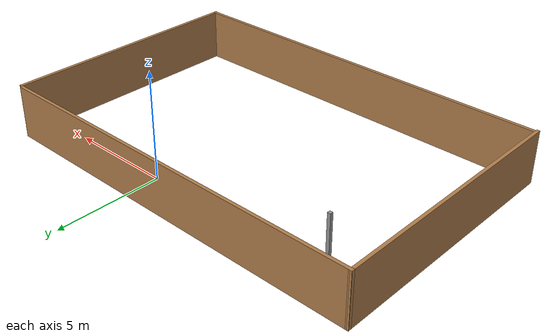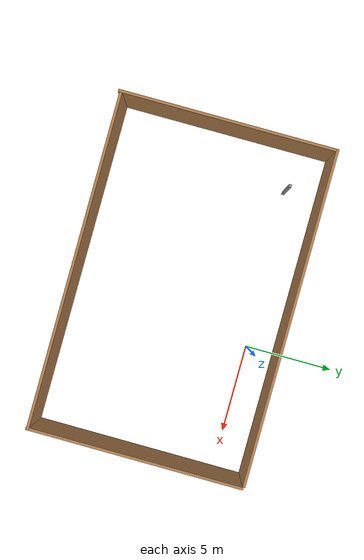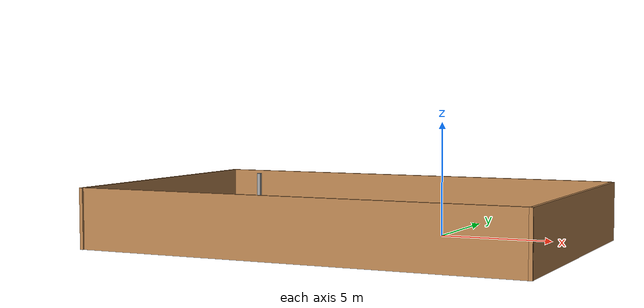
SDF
<?xml version='1.0'?>
<sdf version='1.6'>
  <model name='C205'>
    <pose frame=''>-2.17369 -4.39009 0 0 -0 0</pose>
    <link name='Wall_24'>
      <collision name='Wall_24_Collision'>
        <geometry>
          <box>
            <size>0.15 0.15 2.5</size>
          </box>
        </geometry>
        <pose frame=''>0 0 1.25 0 -0 0</pose>
      </collision>
      <visual name='Wall_24_Visual'>
        <pose frame=''>0 0 1.25 0 -0 0</pose>
        <geometry>
          <box>
            <size>0.15 0.15 2.5</size>
          </box>
        </geometry>
        <material>
          <script>
            <uri>file://media/materials/scripts/gazebo.material</uri>
            <name>Gazebo/Grey</name>
          </script>
          <ambient>0 0 0 0</ambient>
        </material>
      </visual>
      <pose frame=''>-6.85815 4.07733 0 0 -0 0</pose>
    </link>
    <link name='Wall_25'>
      <collision name='Wall_25_Collision'>
        <geometry>
          <box>
            <size>18.6594 0.15 2.5</size>
          </box>
        </geometry>
        <pose frame=''>0 0 1.25 0 -0 0</pose>
      </collision>
      <visual name='Wall_25_Visual'>
        <pose frame=''>0 0 1.25 0 -0 0</pose>
        <geometry>
          <box>
            <size>18.6594 0.15 2.5</size>
          </box>
        </geometry>
        <material>
          <script>
            <uri>file://media/materials/scripts/gazebo.material</uri>
            <name>Gazebo/Wood</name>
          </script>
          <ambient>1 1 1 1</ambient>
        </material>
      </visual>
      <pose frame=''>-0.077807 6.00709 0 0 -0 3.14159</pose>
    </link>
    <link name='Wall_26'>
      <collision name='Wall_26_Collision'>
        <geometry>
          <box>
            <size>12.1642 0.15 2.5</size>
          </box>
        </geometry>
        <pose frame=''>0 0 1.25 0 -0 0</pose>
      </collision>
      <visual name='Wall_26_Visual'>
        <pose frame=''>0 0 1.25 0 -0 0</pose>
        <geometry>
          <box>
            <size>12.1642 0.15 2.5</size>
          </box>
        </geometry>
        <material>
          <script>
            <uri>file://media/materials/scripts/gazebo.material</uri>
            <name>Gazebo/Wood</name>
          </script>
          <ambient>1 1 1 1</ambient>
        </material>
      </visual>
      <pose frame=''>-9.31253 0 0 0 0 -1.5675</pose>
    </link>
    <link name='Wall_27'>
      <collision name='Wall_27_Collision'>
        <geometry>
          <box>
            <size>18.7752 0.15 2.5</size>
          </box>
        </geometry>
        <pose frame=''>0 0 1.25 0 -0 0</pose>
      </collision>
      <visual name='Wall_27_Visual'>
        <pose frame=''>0 0 1.25 0 -0 0</pose>
        <geometry>
          <box>
            <size>18.7752 0.15 2.5</size>
          </box>
        </geometry>
        <material>
          <script>
            <uri>file://media/materials/scripts/gazebo.material</uri>
            <name>Gazebo/Wood</name>
          </script>
          <ambient>1 1 1 1</ambient>
        </material>
      </visual>
      <pose frame=''>0.019855 -5.91924 0 0 -0 0.001197</pose>
    </link>
    <link name='Wall_28'>
      <collision name='Wall_28_Collision'>
        <geometry>
          <box>
            <size>12 0.15 2.5</size>
          </box>
        </geometry>
        <pose frame=''>0 0 1.25 0 -0 0</pose>
      </collision>
      <visual name='Wall_28_Visual'>
        <pose frame=''>0 0 1.25 0 -0 0</pose>
        <geometry>
          <box>
            <size>12 0.15 2.5</size>
          </box>
        </geometry>
        <material>
          <script>
            <uri>file://media/materials/scripts/gazebo.material</uri>
            <name>Gazebo/Wood</name>
          </script>
          <ambient>1 1 1 1</ambient>
        </material>
      </visual>
      <pose frame=''>9.33246 -0.005389 0 0 -0 1.5708</pose>
    </link>
    <static>1</static>
  </model>
</sdf>
